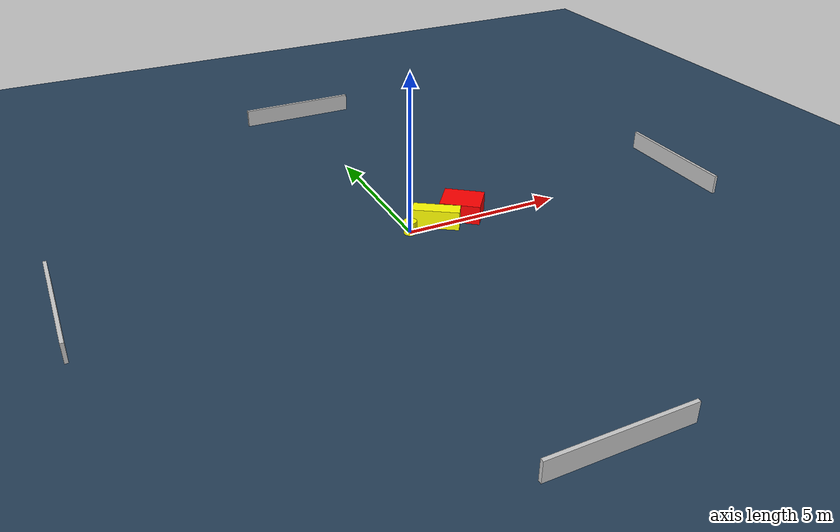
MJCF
<?xml version="1.0" ?>
<mujoco model="generated_environment">
  <option timestep="0.01" integrator="RK4" cone="elliptic"/>
  <default>
    <geom density="1"/>
  </default>
  <asset>
    <texture builtin="gradient" height="3072" name="skybox" rgb1="0.3 0.5 0.7" rgb2="0 0 0" type="skybox" width="512"/>
    <texture builtin="checker" height="300" name="groundplane" rgb1="0.2 0.3 0.4" rgb2="0.1 0.2 0.3" type="2d" width="300"/>
    <material name="groundplane" reflectance="0.2" texrepeat="5 5" texture="groundplane"/>
  </asset>
  <worldbody>
    <light dir="0 0 -1" directional="true" pos="0 0 1.5"/>
    <geom condim="3" friction="0.5 0.005 0.001" material="groundplane" name="floor" pos="0 0 0" size="0 0 0.05" type="plane"/>
    <body name="walls">
      <geom name="wall_1" condim="4" pos="-10.0 0.0 0.3" rgba="0.800000011920929 0.800000011920929 0.800000011920929 1.0" size="0.05 2.0 0.3" type="box"/>
      <geom name="wall_2" condim="4" pos="10.0 0.0 0.3" rgba="0.800000011920929 0.800000011920929 0.800000011920929 1.0" size="0.05 2.0 0.3" type="box"/>
      <geom name="wall_3" condim="4" pos="0.0 -10.0 0.3" rgba="0.800000011920929 0.800000011920929 0.800000011920929 1.0" size="2.0 0.05 0.3" type="box"/>
      <geom name="wall_4" condim="4" pos="0.0 10.0 0.3" rgba="0.800000011920929 0.800000011920929 0.800000011920929 1.0" size="2.0 0.05 0.3" type="box"/>
    </body>
    <body name="robot">
      <joint name="joint_x" type="slide" pos="0 0 0" axis="1 0 0"/>
      <joint name="joint_y" type="slide" pos="0 0 0" axis="0 1 0"/>
      <geom name="robot" type="cylinder" pos="0.0 0.0 0.2" size="0.2 0.2 0.0" mass="5.0" friction="1.0 0.005 0.0001" condim="4" rgba="1.0 1.0 0.0 1.0"/>
    </body>
    <body name="obstacle_1_movable">
      <geom name="obstacle_1_movable" condim="4" pos="0.9076844039397084 0.0641502725073116 0.3" euler="0 0 236.44100408497573" friction="0.0 0.005 0.001" rgba="1.0 1.0 0.0 1.0" size="0.23283052195956605 0.7187702148024653 0.3" type="box" mass="0.1"/>
      <joint type="free"/>
    </body>
    <body name="obstacle_2_static">
      <geom name="obstacle_2_static" condim="4" pos="1.9218525229449341 0.2927948206359906 0.3" euler="0 0 232.14454350441198" friction="0.0 0.005 0.001" rgba="1.0 0.0 0.0 1.0" size="0.5155343746232656 0.624417219915227 0.3" type="box"/>
    </body>
  </worldbody>
  <actuator>
    <motor name="actuator_x" joint="joint_x" gear="1" ctrlrange="-1 1"/>
    <motor name="actuator_y" joint="joint_y" gear="1" ctrlrange="-1 1"/>
  </actuator>
</mujoco>
